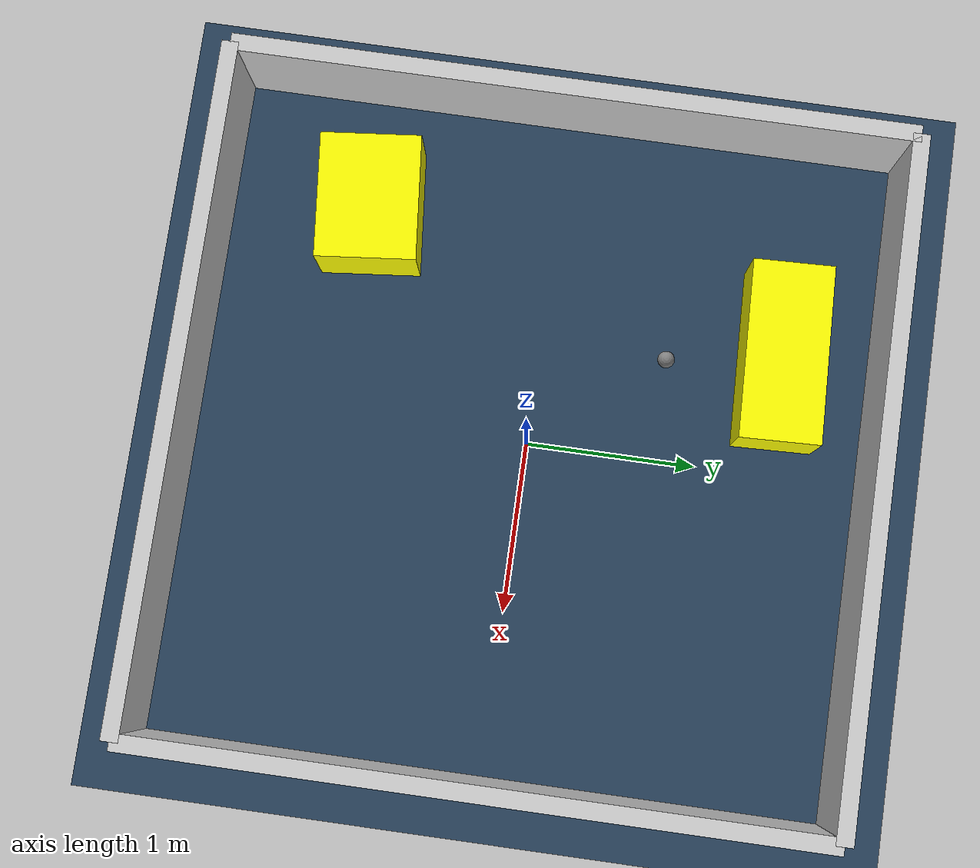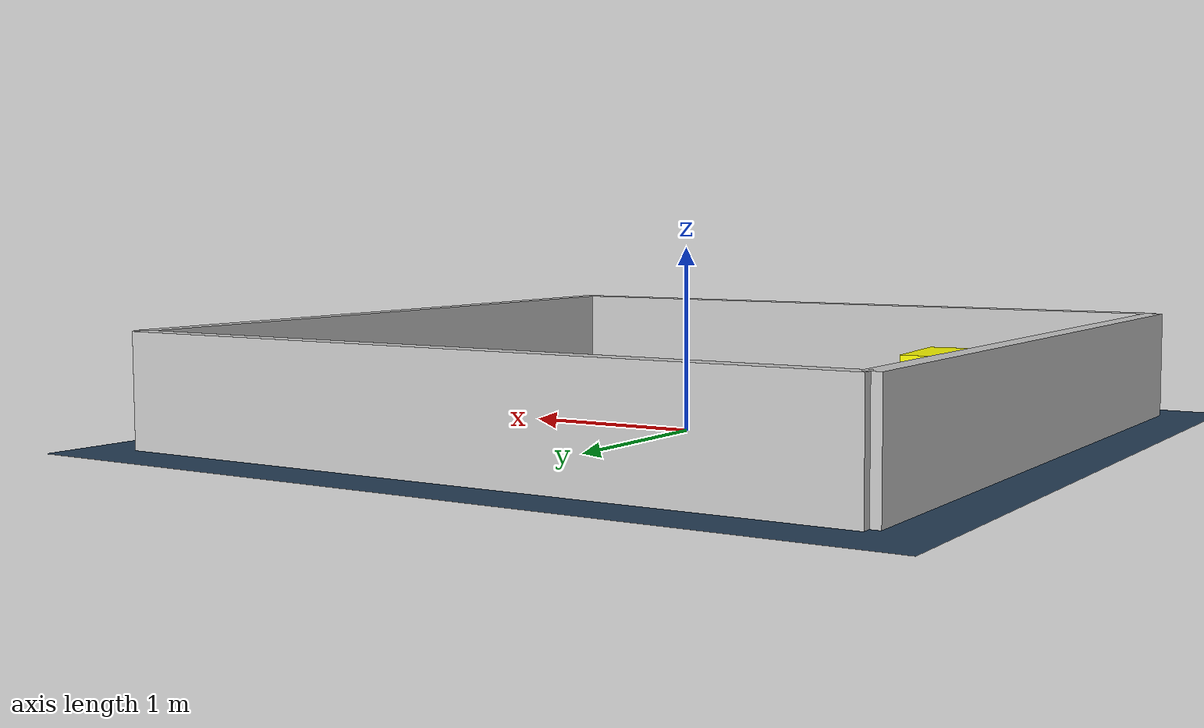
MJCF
<?xml version="1.0" ?>
<mujoco model="generated_environment">
  <option timestep="0.01" integrator="RK4" cone="elliptic"/>
  <default>
    <geom density="1"/>
  </default>
  <asset>
    <texture builtin="gradient" height="3072" rgb1="0.3 0.5 0.7" rgb2="0 0 0" type="skybox" width="512"/>
    <texture builtin="checker" height="300" mark="edge" markrgb="0.8 0.8 0.8" name="groundplane" rgb1="0.2 0.3 0.4" rgb2="0.1 0.2 0.3" type="2d" width="300"/>
    <material name="groundplane" reflectance="0.2" texrepeat="5 5" texture="groundplane" texuniform="true"/>
    <material name="robot" rgba="0.0 1.0 0.0 1"/>
  </asset>
  <worldbody>
    <light dir="0 0 -1" directional="true" pos="0 0 1.5"/>
    <geom condim="4" friction="1.0 0.005 0.001" material="groundplane" name="floor" size="0 0 0.05" type="plane"/>
    <body name="walls">
      <geom name="wall_1" condim="4" pos="-2.0 0.0 0.3" rgba="0.800000011920929 0.800000011920929 0.800000011920929 1.0" size="0.05 2.0 0.3" type="box"/>
      <geom name="wall_2" condim="4" pos="2.0 0.0 0.3" rgba="0.800000011920929 0.800000011920929 0.800000011920929 1.0" size="0.05 2.0 0.3" type="box"/>
      <geom name="wall_3" condim="4" pos="0.0 -2.0 0.3" rgba="0.800000011920929 0.800000011920929 0.800000011920929 1.0" size="2.0 0.05 0.3" type="box"/>
      <geom name="wall_4" condim="4" pos="0.0 2.0 0.3" rgba="0.800000011920929 0.800000011920929 0.800000011920929 1.0" size="2.0 0.05 0.3" type="box"/>
    </body>
    <body name="robot">
      <joint name="joint_x" type="slide" pos="0 0 0" axis="1 0 0"/>
      <joint name="joint_y" type="slide" pos="0 0 0" axis="0 1 0"/>
      <geom name="robot" type="sphere" pos="-0.5790501136703343 0.7430920228268549 0.2" size="0.05" mass="5." friction="1.0 0.005 0.0001" condim="4"/>
      <site name="sensor_ball"/>
    </body>
    <body name="obstacle_1_movable">
      <geom name="obstacle_1_movable" condim="4" pos="-0.6852852291133766 1.4137619474681762 0.2" euler="0 0 272.0382148795433" friction="1.0 0.005 0.001" rgba="1 1 0 1" size="0.23785719966804164 0.5236105460609004 0.2" type="box" mass="0.1"/>
      <joint type="free"/>
    </body>
    <body name="obstacle_2_movable">
      <geom name="obstacle_2_movable" condim="4" pos="-1.2615995640516846 -1.1067444571763903 0.2" euler="0 0 275.748687570916" friction="1.0 0.005 0.001" rgba="1 1 0 1" size="0.2962391163762517 0.3717566655739767 0.2" type="box" mass="0.1"/>
      <joint type="free"/>
    </body>
  </worldbody>
  <actuator>
    <motor name="actuator_x" joint="joint_x" gear="1" ctrlrange="-1 1"/>
    <motor name="actuator_y" joint="joint_y" gear="1" ctrlrange="-1 1"/>
  </actuator>
</mujoco>
